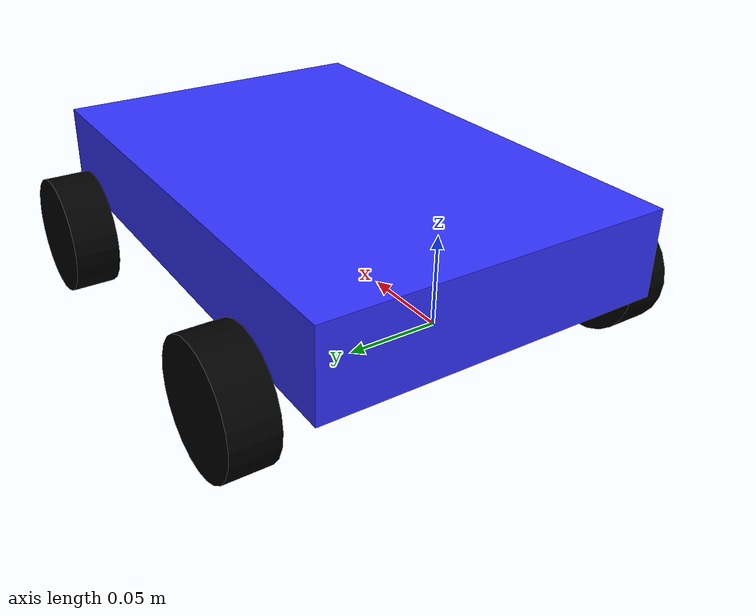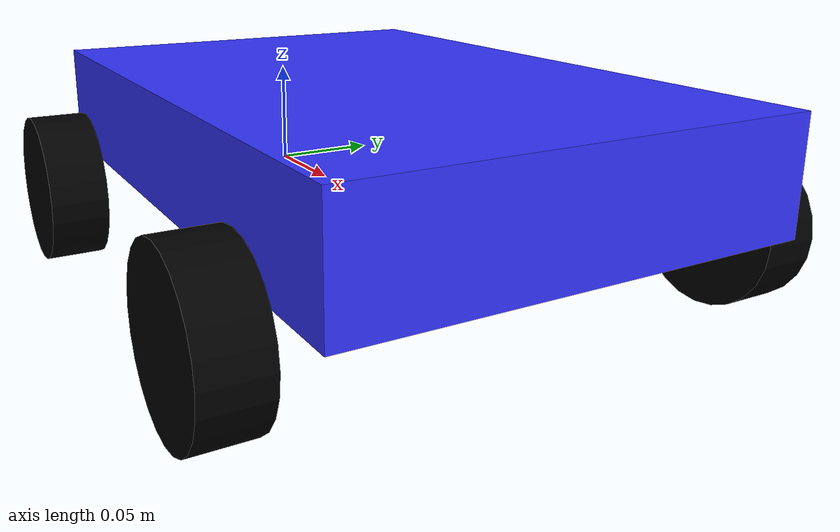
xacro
<?xml version="1.0"?>
<robot xmlns:xacro="http://www.ros.org/wiki/xacro" >

    <xacro:include filename="inertial_macros.xacro"/>

    <xacro:property name="chassis_length" value="0.3"/>
    <xacro:property name="chassis_width" value="0.2"/>
    <xacro:property name="chassis_height" value="0.050"/>
    <xacro:property name="chassis_mass" value="1.0"/>
    <xacro:property name="wheel_radius" value="0.035"/>
    <xacro:property name="wheel_thickness" value="0.026"/>
    <xacro:property name="wheel_mass" value="0.05"/>
    <xacro:property name="wheel_offset_x" value="0.05"/>
    <xacro:property name="wheel_offset_y" value="-0.1200"/>
    <xacro:property name="wheel_offset_z" value="-0.01"/>

    <material name="white">
        <color rgba="1 1 1 1" />
    </material>

    <material name="orange">
        <color rgba="1 0.3 0.1 1"/>
    </material>

    <material name="blue">
        <color rgba="0.2 0.2 1 1"/>
    </material>

    <material name="black">
        <color rgba="0 0 0 1"/>
    </material>

    <material name="red">
        <color rgba="1 0 0 1"/>
    </material>

    <!-- BASE LINK -->

    <link name="base_link">

    </link>

    <!-- BASE_FOOTPRINT LINK -->

    <joint name="base_footprint_joint" type="fixed">
        <parent link="base_link"/>
        <child link="base_footprint"/>
        <origin xyz="0 0 0" rpy="0 0 0"/>
    </joint>

    <link name="base_footprint">
    </link>

    <!-- CHASSIS LINK -->

    <joint name="chassis_joint" type="fixed">
        <parent link="base_link"/>
        <child link="chassis"/>
        <origin xyz="${-wheel_offset_x} 0 ${-wheel_offset_z}"/>
    </joint>

    <link name="chassis">
        <visual>
            <origin xyz="${chassis_length/2} 0 ${chassis_height/2}"/>
            <geometry>
                <box size="${chassis_length} ${chassis_width} ${chassis_height}"/>
            </geometry>
            <material name="blue"/>
        </visual>
        <collision>
            <origin xyz="${chassis_length/2} 0 ${chassis_height/2}"/>
            <geometry>
                <box size="${chassis_length} ${chassis_width} ${chassis_height}"/>
            </geometry>
        </collision>
        <xacro:inertial_box mass="0.5" x="${chassis_length}" y="${chassis_width}" z="${chassis_height}">
            <origin xyz="${chassis_length/2} 0 ${chassis_height/2}" rpy="0 0 0"/>
        </xacro:inertial_box>
    </link>

    <gazebo reference="chassis">
        <material>Gazebo/Blue</material>
    </gazebo>

    <!-- LEFT WHEEL LINK -->

    <joint name="left_wheel_joint" type="continuous">
        <parent link="base_link"/>
        <child link="left_wheel"/>
        <origin xyz="0 ${wheel_offset_y} 0" rpy="-${pi/2} 0 0" />
        <axis xyz="0 0 1"/>
    </joint>

    <link name="left_wheel">
        <visual>
            <geometry>
                <cylinder radius="${wheel_radius}" length="${wheel_thickness}"/>
            </geometry>
            <material name="black"/>
        </visual>
        <collision>
            <geometry>
                <sphere radius="${wheel_radius}"/>
            </geometry>
        </collision>
        <xacro:inertial_cylinder mass="${wheel_mass}" length="${wheel_thickness}" radius="${wheel_radius}">
            <origin xyz="0 0 0" rpy="0 0 0"/>
        </xacro:inertial_cylinder>
    </link>

    <gazebo reference="left_wheel">
        <material>Gazebo/Black</material>
    </gazebo>

    <!-- LEFT  FRONT WHEEL LINK -->

    <joint name="left_front_wheel_joint" type="continuous">
        <parent link="base_link"/>
        <child link="left_front_wheel"/>
        <origin xyz="0.2 ${wheel_offset_y} 0" rpy="-${pi/2} 0 0" />
        <axis xyz="0 0 1"/>
        <mimic joint="left_wheel_joint" multiplier="1"/>
    </joint>

    <link name="left_front_wheel">
        <visual>
            <geometry>
                <cylinder radius="${wheel_radius}" length="${wheel_thickness}"/>
            </geometry>
            <material name="black"/>
        </visual>
        <collision>
            <geometry>
                <sphere radius="${wheel_radius}"/>
            </geometry>
        </collision>
        <xacro:inertial_cylinder mass="${wheel_mass}" length="${wheel_thickness}" radius="${wheel_radius}">
            <origin xyz="0 0 0" rpy="0 0 0"/>
        </xacro:inertial_cylinder>
    </link>

    <gazebo reference="left_wheel">
        <material>Gazebo/Black</material>
    </gazebo>

    <!-- RIGHT WHEEL LINK -->

    <joint name="right_wheel_joint" type="continuous">
        <parent link="base_link"/>
        <child link="right_wheel"/>
        <origin xyz="0 ${-wheel_offset_y} 0" rpy="${pi/2} 0 0" />
        <axis xyz="0 0 -1"/>
    </joint>

    <link name="right_wheel">
        <visual>
            <geometry>
                <cylinder radius="${wheel_radius}" length="${wheel_thickness}"/>
            </geometry>
            <material name="black"/>
        </visual>
        <collision>
            <geometry>
                <sphere radius="${wheel_radius}"/>
            </geometry>
        </collision>
        <xacro:inertial_cylinder mass="${wheel_mass}" length="${wheel_thickness}" radius="${wheel_radius}">
            <origin xyz="0 0 0" rpy="0 0 0"/>
        </xacro:inertial_cylinder>
    </link>

    <gazebo reference="right_wheel">
        <material>Gazebo/Black</material>
    </gazebo>

    <!-- RIGHT FRONT WHEEL LINK -->

    <joint name="right_front_wheel_joint" type="continuous">
        <parent link="base_link"/>
        <child link="right_front_wheel"/>
        <origin xyz="0.2 ${-wheel_offset_y} 0" rpy="${pi/2} 0 0" />
        <axis xyz="0 0 -1"/>
        <mimic joint="right_wheel_joint" multiplier="1"/>
    </joint>

    <link name="right_front_wheel">
        <visual>
            <geometry>
                <cylinder radius="${wheel_radius}" length="${wheel_thickness}"/>
            </geometry>
            <material name="black"/>
        </visual>
        <collision>
            <geometry>
                <sphere radius="${wheel_radius}"/>
            </geometry>
        </collision>
        <xacro:inertial_cylinder mass="${wheel_mass}" length="${wheel_thickness}" radius="${wheel_radius}">
            <origin xyz="0 0 0" rpy="0 0 0"/>
        </xacro:inertial_cylinder>
    </link>

    <gazebo reference="right_wheel">
        <material>Gazebo/Black</material>
    </gazebo>

</robot>
